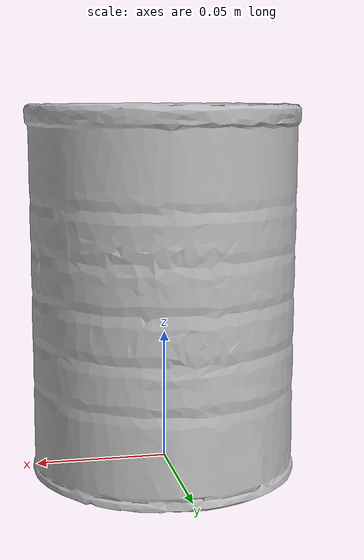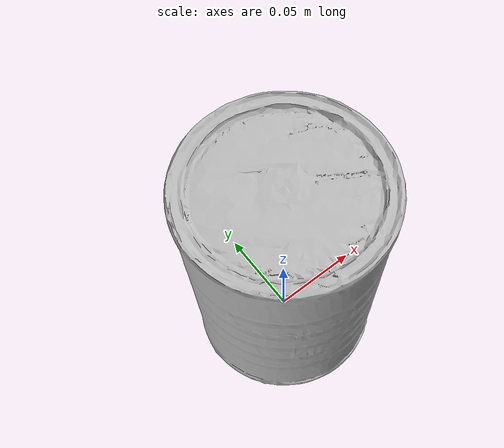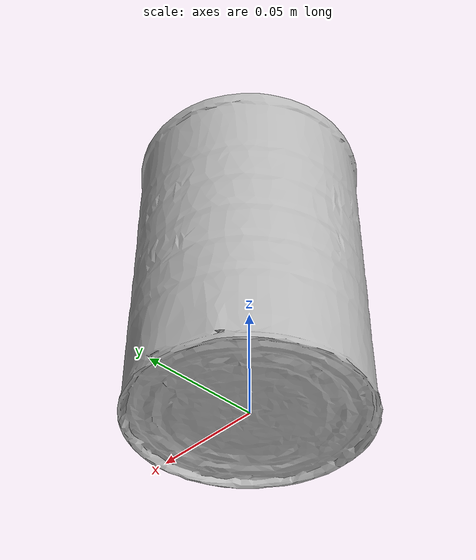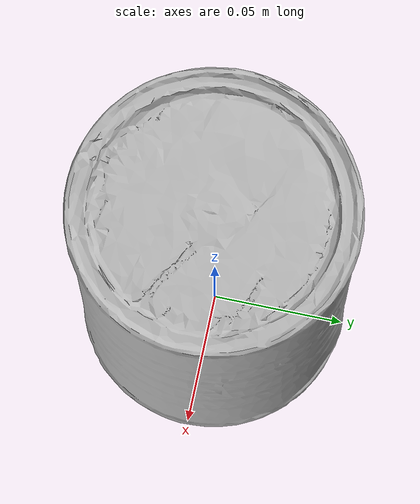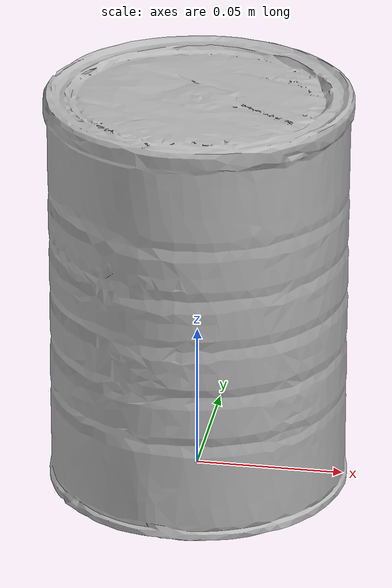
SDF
<?xml version="1.0" ?>
<sdf version="1.8">
  <model name='ycb_006_coffee_can'>
    <link name='body'>
      <inertial>
        <mass>1.42361968467</mass>
        <pose>0.000560270485 -0.000340855847 0.0674052199 0 0 0</pose>
        <inertia>
          <ixx>0.00305897885852</ixx>
          <ixy>1.33544357285e-06</ixy>
          <ixz>-1.89707656239e-06</ixz>
          <iyy>0.00305274649093</iyy>
          <iyz>6.51326966731e-07</iyz>
          <izz>0.0017830168783</izz>
        </inertia>
      </inertial>

      <visual name='ycb_006_coffee_can_visual'>
        <pose>0.017631 0.009422 -0.003179 0 0 0</pose>
        <geometry>
          <mesh>
            <uri>model://ycb_006_coffee_can/meshes/textured.dae</uri>
          </mesh>
        </geometry>
      </visual>

      <collision name='ycb_006_coffee_can_collision'>
        <pose>0.017631 0.009422 -0.003179 0 0 0</pose>
        <geometry>
          <mesh>
            <uri>model://ycb_006_coffee_can/meshes/nontextured.stl</uri>
          </mesh>
        </geometry>
        <max_contacts>10</max_contacts>
      </collision>
    </link>
  </model>
</sdf>
